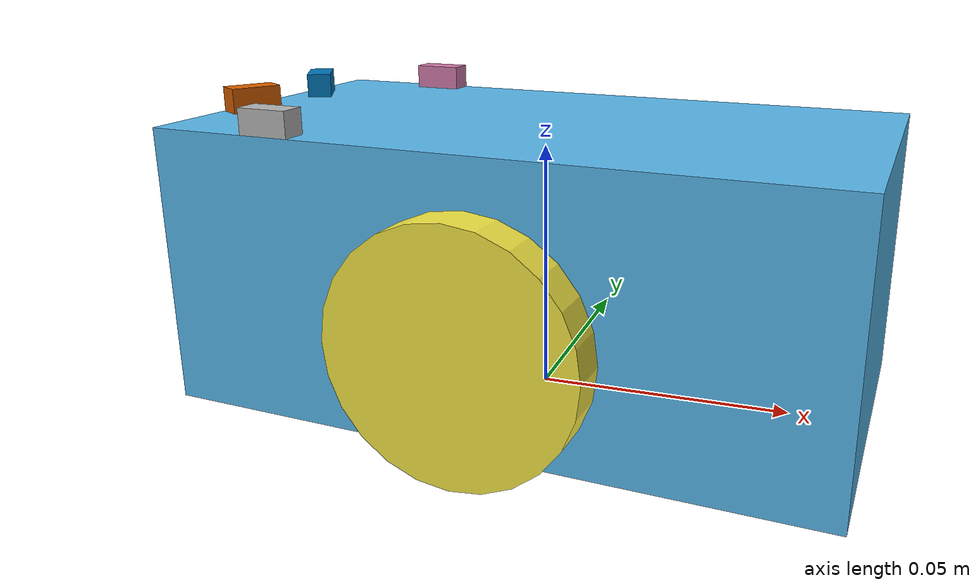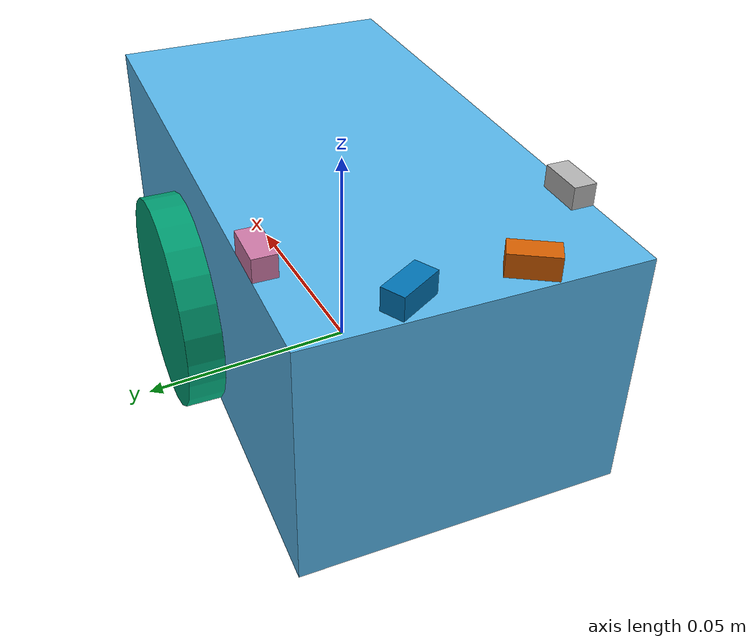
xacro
<?xml version="1.0" ?>
<robot name="SimpleMouse" xmlns:xacro="http://ros.org/wiki/xacro">
  <xacro:include filename="$(find raspi_description)/urdf/body.urdf.xacro" />
  <xacro:include filename="$(find raspi_description)/urdf/wheel.urdf.xacro" />
  <xacro:include filename="$(find raspi_description)/urdf/light_sensor.urdf.xacro" />
  <xacro:wheel rl="r" parent="body" />
  <xacro:wheel rl="l" parent="body" />
  <xacro:gazebo_light_sensor name="left" parent="body" xyz="0.012 0.06 0.03" direction="-${PI/3}" />
  <xacro:gazebo_light_sensor name="right" parent="body" xyz="-0.012 0.06 0.03" direction="${PI/3}" />
  <xacro:gazebo_light_sensor name="front_left" parent="body" xyz="0.0325 0.04 0.03" direction="0" />
  <xacro:gazebo_light_sensor name="front_right" parent="body" xyz="-0.0325 0.04 0.03" direction="0" />
  <gazebo>
    <plugin name="gazebo_ros_control" filename="libgazebo_ros_control.so">
      <robotNamespace>RaspberryPiMouse</robotNamespace>
      <robotSimType>gazebo_ros_control/DefaultRobotHWSim</robotSimType>
    </plugin>
    <plugin name="differential_drive_controller" filename="libgazebo_ros_diff_drive.so">
      <leftJoint>wheel_l_joint</leftJoint>
      <rightJoint>wheel_r_joint</rightJoint>
      <robotBaseFrame>base_link</robotBaseFrame>
      <wheelSeparation>0.08</wheelSeparation>
      <wheelDiameter>0.048</wheelDiameter>
      <publishWheelJointState>true</publishWheelJointState>
      <legacyMode>false</legacyMode>
      <odometryTopic>odometry</odometryTopic>
      <odometryFrame>odometry</odometryFrame>
    </plugin>
  </gazebo>
  <transmission name="trans1">
    <type>transmission_interface/SimpleTransmission</type>
    <joint name="wheel_r_joint">
      <hardwareInterface>VelocityJointInterface</hardwareInterface>
    </joint>
    <actuator name="wheel_r_motor">
      <hardwareInterface>VelocityJointInterface</hardwareInterface>
      <mechanismReduction>1</mechanismReduction>
    </actuator>
  </transmission>
  <transmission name="tran2">
    <type>transmission_interface/SimpleTransmission</type>
    <joint name="wheel_l_joint">
      <hardwareInterface>VelocityJointInterface</hardwareInterface>
    </joint>
    <actuator name="wheel_l_motor">
      <hardwareInterface>VelocityJointInterface</hardwareInterface>
      <mechanismReduction>1</mechanismReduction>
    </actuator>
  </transmission>
</robot>

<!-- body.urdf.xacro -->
<robot name="body" xmlns:xacro="http://ros.org/wiki/xacro">
  <link name="base_link" />
  <xacro:property name="b_m" value="1.52" />
  <xacro:property name="b_w" value="0.07" />
  <xacro:property name="b_h" value="0.13" />
  <xacro:property name="b_d" value="0.055" />
  <link name="body">
    <visual>
      <geometry>
        <box size="${b_w} ${b_h} ${b_d}" />
      </geometry>
    </visual>
    <collision>
      <geometry>
        <box size="${b_w} ${b_h} ${b_d}" />
      </geometry>
    </collision>
    <inertial>
      <origin xyz="0 0 0" rpy="0 0 0" />
      <mass value="${b_m}" />
      <inertia ixx="${b_m*(b_h*b_h+b_d*b_d)/12}" ixy="0" ixz="0"
               iyx="0" iyy="${b_m*(b_w*b_w+b_d*b_d)/12}" iyz="0"
               izx="0" izy="0" izz="${b_m*(b_w*b_w+b_h*b_h)/12}" />
    </inertial>
  </link>
  <joint name="body_joint" type="fixed">
    <parent link="base_link" />
    <child link="body" />
    <origin xyz="0 0 0.0275" rpy="0 0 1.5" />
  </joint>
</robot>

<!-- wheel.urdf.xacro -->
<robot name="wheel" xmlns:xacro="http://ros.org/wiki/xacro">
  <xacro:property name="PI" value="3.1415926533897931" />
  <xacro:property name="wheel_radius" value="0.024" />
  <xacro:property name="wheel_height" value="0.008" />
  <xacro:property name="wheel_mass" value="0.112" />
  <xacro:macro name="wheel" params="rl parent">
    <link name="wheel_${rl}">
      <visual>
        <geometry>
          <cylinder length="${wheel_height}" radius="${wheel_radius}" />
        </geometry>
      </visual>
      <collision>
        <geometry>
          <cylinder length="${wheel_height}" radius="${wheel_radius}" />
        </geometry>
      </collision>
      <inertial>
        <origin xyz="0 0 0" rpy="0 0 0" />
        <mass value="${wheel_mass}" />
        <inertia ixx="${wheel_mass*(3*wheel_radius*wheel_radius + wheel_height*wheel_height)/12}" ixy="0" ixz="0"
                 iyx="0" iyy="${wheel_mass*(3*wheel_radius*wheel_radius+wheel_height*wheel_height)/12}" iyz="0"
                 izx="0" izy="0" izz="${wheel_mass*(wheel_radius*wheel_radius)/2}" />
      </inertial>
    </link>
    <joint name="wheel_${rl}_joint" type="continuous">
      <parent link="${parent}" />
      <child link="wheel_${rl}" />
      <xacro:if value="${rl == 'r'}">
        <origin xyz="0.04 0 ${0.022 - 0.0275}" rpy="0 ${PI/2} 0" />
      </xacro:if>
      <xacro:if value ="${rl == 'l'}">
        <origin xyz="-0.04 0 ${0.022 - 0.0275}" rpy="0 ${PI/2} 0" />
      </xacro:if>
      <axis xyz="0 0 1" />
      <limit effort="10" velocity="10" />
      <joint_properties damping="0.0" friction="0.0" />
    </joint>
  </xacro:macro>
</robot>

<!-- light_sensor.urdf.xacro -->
<robot name="light_sensor" xmlns:xacro="http://ros.org/wiki/xacro">
  <xacro:property name="light_range" value="0.18" />
  <xacro:property name="min_range" value="0.01" />
  <xacro:property name="max_range" value="0.2" />
  <xacro:property name="PI" value="3.14159265358979" />
  <xacro:macro name="gazebo_light_sensor" params ="name parent xyz direction">
    <link name="${name}_sensor">
      <visual>
        <geometry>
          <box size="0.01 0.005 0.005" />
        </geometry>
      </visual>
      <inertial>
        <mass value="0.0001" />
        <inertia ixx="0.00001" ixy="0" ixz="0"
                 iyx="0" iyy="0.0001" iyz="0"
                 izx="0" izy="0" izz="0.0001" />
      </inertial>
    </link>
    <joint name="${name}_sensor_joint" type="fixed">
      <parent link="${parent}" />
      <child link="${name}_sensor" />
      <origin xyz="${xyz}" rpy="0 0 ${PI/2 + direction}" />
    </joint>
    <gazebo reference="${name}_sensor">
      <sensor type="ray" name="${name}_light_sensor">
        <pose>0 0 0 0 0 0</pose>
        <visualize>true</visualize>
        <update_rate>20</update_rate>
        <ray>
          <scan>
            <horizontal>
              <samples>10</samples>
              <resolution>1</resolution>
              <min_angle> -${light_range/2}</min_angle>
              <max_angle>${light_range/2}</max_angle>
            </horizontal>
          </scan>
          <range>
            <min>${min_range}</min>
            <max>${max_range}</max>
            <resolution>0.001</resolution>
          </range>
          <noise>
            <type>gaussian</type>
            <mean>0.0</mean>
            <stddev>0.005</stddev>
          </noise>
        </ray>
        <plugin name="gazebo_${name}_light_sensor_controller" filename="libgazebo_ros_laser.so">
          <topicName>/light_sensor/${name}/scan</topicName>
          <frameName>${name}_sensor</frameName>
        </plugin>
      </sensor>
    </gazebo>
  </xacro:macro>
</robot>
